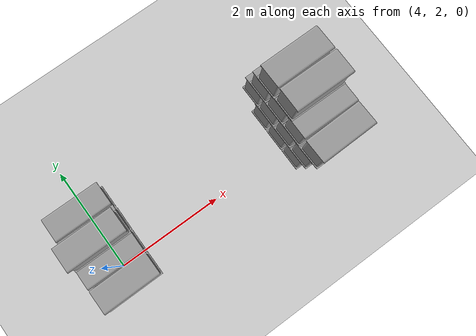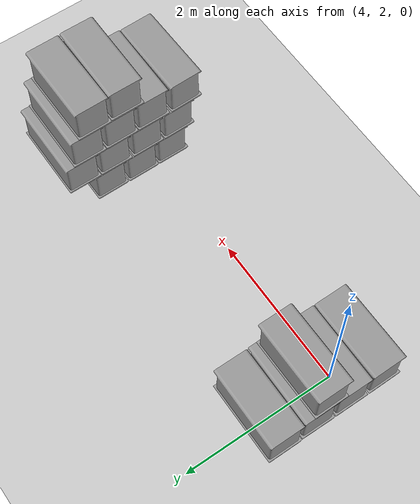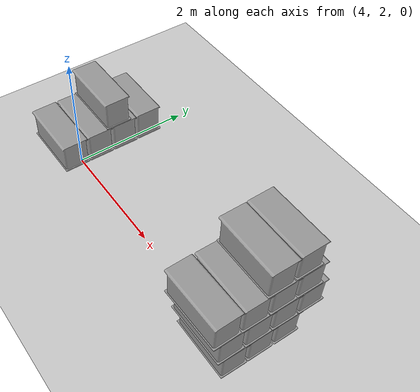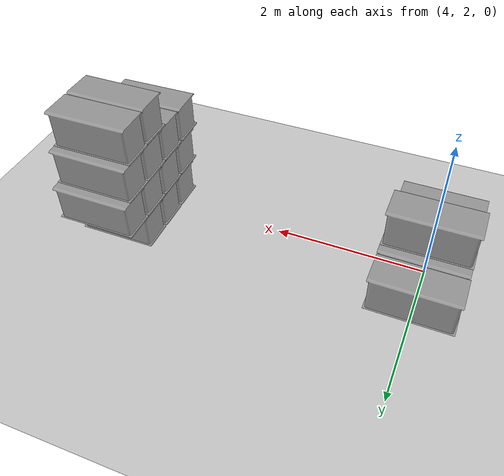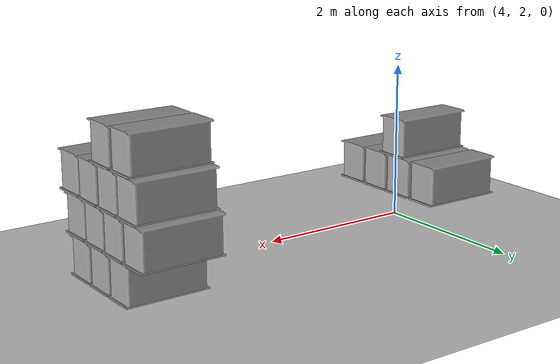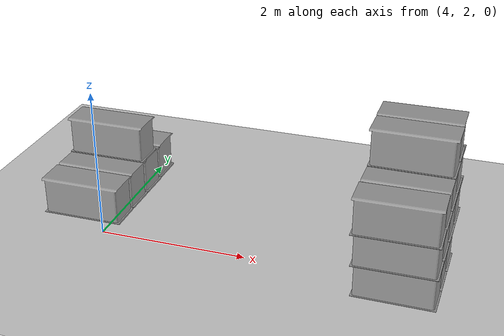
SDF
<sdf version="1.7">
 <world name="default">
  <model name="ground_plane">
   <static>1</static>
   <link name="link">
    <collision name="collision">
     <geometry><plane><normal>0 0 1</normal><size>100 100</size></plane></geometry>
     <surface><friction><ode><mu>100</mu><mu2>50</mu2></ode></friction></surface>
    </collision>
    <visual name="visual">
     <cast_shadows>0</cast_shadows>
     <geometry><plane><normal>0 0 1</normal><size>100 100</size></plane></geometry>
     <material>
      <script><uri>file://media/materials/scripts/gazebo.material</uri><name>Gazebo/Grey</name></script>
     </material>
    </visual>
   </link>
  </model>
  <model name="my_robot48">
   <link name="link_0">
    <inertial>
     <mass>1</mass>
     <inertia>
      <ixx>0.166667</ixx>
      <ixy>0</ixy>
      <ixz>0</ixz>
      <iyy>0.166667</iyy>
      <iyz>0</iyz>
      <izz>0.166667</izz>
     </inertia>
    </inertial>
    <visual name="visual">
     <geometry><mesh><uri>/home/cyun/cotton_box.stl</uri><scale>1 1 1</scale></mesh></geometry>
     <material>
      <lighting>1</lighting>
      <script><uri>file://media/materials/scripts/gazebo.material</uri><name>Gazebo/Grey</name></script>
      <shader type="pixel"><normal_map>__default__</normal_map></shader>
      <ambient>0.3 0.3 0.3 1</ambient>
      <diffuse>0.7 0.7 0.7 1</diffuse>
      <specular>0.01 0.01 0.01 1</specular>
      <emissive>0 0 0 1</emissive>
     </material>
    </visual>
    <collision name="collision">
     <geometry><mesh><uri>/home/cyun/cotton_box.stl</uri><scale>1 1 1</scale></mesh></geometry>
     <surface>
      <friction>
       <ode><mu>1</mu><mu2>1</mu2><fdir1>0 0 0</fdir1><slip1>0</slip1><slip2>0</slip2></ode>
       <torsional>
        <coefficient>1</coefficient>
        <patch_radius>0</patch_radius>
        <surface_radius>0</surface_radius>
        <use_patch_radius>1</use_patch_radius>
        <ode><slip>0</slip></ode>
       </torsional>
      </friction>
      <bounce><restitution_coefficient>0</restitution_coefficient><threshold>1e+06</threshold></bounce>
      <contact>
       <collide_without_contact>0</collide_without_contact>
       <collide_without_contact_bitmask>1</collide_without_contact_bitmask>
       <collide_bitmask>1</collide_bitmask>
       <ode>
        <soft_cfm>0</soft_cfm>
        <soft_erp>0.2</soft_erp>
        <kp>1e+13</kp>
        <kd>1</kd>
        <max_vel>0.01</max_vel>
        <min_depth>0</min_depth>
       </ode>
       <bullet>
        <split_impulse>1</split_impulse>
        <split_impulse_penetration_threshold>-0.01</split_impulse_penetration_threshold>
        <soft_cfm>0</soft_cfm>
        <soft_erp>0.2</soft_erp>
        <kp>1e+13</kp>
        <kd>1</kd>
       </bullet>
      </contact>
     </surface>
    </collision>
   </link>
   <static>0</static>
   <pose>4.00113 1.7054 0.509977 4e-06 6.8e-05 1.57372</pose>
  </model>
  <model name="my_robot49">
   <link name="link_0">
    <inertial>
     <mass>1</mass>
     <inertia>
      <ixx>0.166667</ixx>
      <ixy>0</ixy>
      <ixz>0</ixz>
      <iyy>0.166667</iyy>
      <iyz>0</iyz>
      <izz>0.166667</izz>
     </inertia>
    </inertial>
    <visual name="visual">
     <geometry><mesh><uri>/home/cyun/cotton_box.stl</uri><scale>1 1 1</scale></mesh></geometry>
     <material>
      <lighting>1</lighting>
      <script><uri>file://media/materials/scripts/gazebo.material</uri><name>Gazebo/Grey</name></script>
      <shader type="pixel"><normal_map>__default__</normal_map></shader>
      <ambient>0.3 0.3 0.3 1</ambient>
      <diffuse>0.7 0.7 0.7 1</diffuse>
      <specular>0.01 0.01 0.01 1</specular>
      <emissive>0 0 0 1</emissive>
     </material>
    </visual>
    <collision name="collision">
     <geometry><mesh><uri>/home/cyun/cotton_box.stl</uri><scale>1 1 1</scale></mesh></geometry>
     <surface>
      <friction>
       <ode><mu>1</mu><mu2>1</mu2><fdir1>0 0 0</fdir1><slip1>0</slip1><slip2>0</slip2></ode>
       <torsional>
        <coefficient>1</coefficient>
        <patch_radius>0</patch_radius>
        <surface_radius>0</surface_radius>
        <use_patch_radius>1</use_patch_radius>
        <ode><slip>0</slip></ode>
       </torsional>
      </friction>
      <bounce><restitution_coefficient>0</restitution_coefficient><threshold>1e+06</threshold></bounce>
      <contact>
       <collide_without_contact>0</collide_without_contact>
       <collide_without_contact_bitmask>1</collide_without_contact_bitmask>
       <collide_bitmask>1</collide_bitmask>
       <ode>
        <soft_cfm>0</soft_cfm>
        <soft_erp>0.2</soft_erp>
        <kp>1e+13</kp>
        <kd>1</kd>
        <max_vel>0.01</max_vel>
        <min_depth>0</min_depth>
       </ode>
       <bullet>
        <split_impulse>1</split_impulse>
        <split_impulse_penetration_threshold>-0.01</split_impulse_penetration_threshold>
        <soft_cfm>0</soft_cfm>
        <soft_erp>0.2</soft_erp>
        <kp>1e+13</kp>
        <kd>1</kd>
       </bullet>
      </contact>
     </surface>
    </collision>
   </link>
   <static>0</static>
   <pose>4.00178 2.15524 0.509986 -8.4e-05 0.000371 1.56371</pose>
  </model>
  <model name="my_robot50">
   <link name="link_0">
    <inertial>
     <mass>1</mass>
     <inertia>
      <ixx>0.166667</ixx>
      <ixy>0</ixy>
      <ixz>0</ixz>
      <iyy>0.166667</iyy>
      <iyz>0</iyz>
      <izz>0.166667</izz>
     </inertia>
    </inertial>
    <visual name="visual">
     <geometry><mesh><uri>/home/cyun/cotton_box.stl</uri><scale>1 1 1</scale></mesh></geometry>
     <material>
      <lighting>1</lighting>
      <script><uri>file://media/materials/scripts/gazebo.material</uri><name>Gazebo/Grey</name></script>
      <shader type="pixel"><normal_map>__default__</normal_map></shader>
      <ambient>0.3 0.3 0.3 1</ambient>
      <diffuse>0.7 0.7 0.7 1</diffuse>
      <specular>0.01 0.01 0.01 1</specular>
      <emissive>0 0 0 1</emissive>
     </material>
    </visual>
    <collision name="collision">
     <geometry><mesh><uri>/home/cyun/cotton_box.stl</uri><scale>1 1 1</scale></mesh></geometry>
     <surface>
      <friction>
       <ode><mu>1</mu><mu2>1</mu2><fdir1>0 0 0</fdir1><slip1>0</slip1><slip2>0</slip2></ode>
       <torsional>
        <coefficient>1</coefficient>
        <patch_radius>0</patch_radius>
        <surface_radius>0</surface_radius>
        <use_patch_radius>1</use_patch_radius>
        <ode><slip>0</slip></ode>
       </torsional>
      </friction>
      <bounce><restitution_coefficient>0</restitution_coefficient><threshold>1e+06</threshold></bounce>
      <contact>
       <collide_without_contact>0</collide_without_contact>
       <collide_without_contact_bitmask>1</collide_without_contact_bitmask>
       <collide_bitmask>1</collide_bitmask>
       <ode>
        <soft_cfm>0</soft_cfm>
        <soft_erp>0.2</soft_erp>
        <kp>1e+13</kp>
        <kd>1</kd>
        <max_vel>0.01</max_vel>
        <min_depth>0</min_depth>
       </ode>
       <bullet>
        <split_impulse>1</split_impulse>
        <split_impulse_penetration_threshold>-0.01</split_impulse_penetration_threshold>
        <soft_cfm>0</soft_cfm>
        <soft_erp>0.2</soft_erp>
        <kp>1e+13</kp>
        <kd>1</kd>
       </bullet>
      </contact>
     </surface>
    </collision>
   </link>
   <static>0</static>
   <pose>4.0044 2.60315 0.509798 -7e-06 0.000242 1.55994</pose>
  </model>
  <model name="my_robot51">
   <link name="link_0">
    <inertial>
     <mass>1</mass>
     <inertia>
      <ixx>0.166667</ixx>
      <ixy>0</ixy>
      <ixz>0</ixz>
      <iyy>0.166667</iyy>
      <iyz>0</iyz>
      <izz>0.166667</izz>
     </inertia>
    </inertial>
    <visual name="visual">
     <geometry><mesh><uri>/home/cyun/cotton_box.stl</uri><scale>1 1 1</scale></mesh></geometry>
     <material>
      <lighting>1</lighting>
      <script><uri>file://media/materials/scripts/gazebo.material</uri><name>Gazebo/Grey</name></script>
      <shader type="pixel"><normal_map>__default__</normal_map></shader>
      <ambient>0.3 0.3 0.3 1</ambient>
      <diffuse>0.7 0.7 0.7 1</diffuse>
      <specular>0.01 0.01 0.01 1</specular>
      <emissive>0 0 0 1</emissive>
     </material>
    </visual>
    <collision name="collision">
     <geometry><mesh><uri>/home/cyun/cotton_box.stl</uri><scale>1 1 1</scale></mesh></geometry>
     <surface>
      <friction>
       <ode><mu>1</mu><mu2>1</mu2><fdir1>0 0 0</fdir1><slip1>0</slip1><slip2>0</slip2></ode>
       <torsional>
        <coefficient>1</coefficient>
        <patch_radius>0</patch_radius>
        <surface_radius>0</surface_radius>
        <use_patch_radius>1</use_patch_radius>
        <ode><slip>0</slip></ode>
       </torsional>
      </friction>
      <bounce><restitution_coefficient>0</restitution_coefficient><threshold>1e+06</threshold></bounce>
      <contact>
       <collide_without_contact>0</collide_without_contact>
       <collide_without_contact_bitmask>1</collide_without_contact_bitmask>
       <collide_bitmask>1</collide_bitmask>
       <ode>
        <soft_cfm>0</soft_cfm>
        <soft_erp>0.2</soft_erp>
        <kp>1e+13</kp>
        <kd>1</kd>
        <max_vel>0.01</max_vel>
        <min_depth>0</min_depth>
       </ode>
       <bullet>
        <split_impulse>1</split_impulse>
        <split_impulse_penetration_threshold>-0.01</split_impulse_penetration_threshold>
        <soft_cfm>0</soft_cfm>
        <soft_erp>0.2</soft_erp>
        <kp>1e+13</kp>
        <kd>1</kd>
       </bullet>
      </contact>
     </surface>
    </collision>
   </link>
   <static>0</static>
   <pose>4.00109 3.0537 0.509995 -0 4.9e-05 1.56627</pose>
  </model>
  <model name="my_robot58">
   <link name="link_0">
    <inertial>
     <mass>1</mass>
     <inertia>
      <ixx>0.166667</ixx>
      <ixy>0</ixy>
      <ixz>0</ixz>
      <iyy>0.166667</iyy>
      <iyz>0</iyz>
      <izz>0.166667</izz>
     </inertia>
    </inertial>
    <visual name="visual">
     <geometry><mesh><uri>/home/cyun/cotton_box.stl</uri><scale>1 1 1</scale></mesh></geometry>
     <material>
      <lighting>1</lighting>
      <script><uri>file://media/materials/scripts/gazebo.material</uri><name>Gazebo/Grey</name></script>
      <shader type="pixel"><normal_map>__default__</normal_map></shader>
      <ambient>0.3 0.3 0.3 1</ambient>
      <diffuse>0.7 0.7 0.7 1</diffuse>
      <specular>0.01 0.01 0.01 1</specular>
      <emissive>0 0 0 1</emissive>
     </material>
    </visual>
    <collision name="collision">
     <geometry><mesh><uri>/home/cyun/cotton_box.stl</uri><scale>1 1 1</scale></mesh></geometry>
     <surface>
      <friction>
       <ode><mu>1</mu><mu2>1</mu2><fdir1>0 0 0</fdir1><slip1>0</slip1><slip2>0</slip2></ode>
       <torsional>
        <coefficient>1</coefficient>
        <patch_radius>0</patch_radius>
        <surface_radius>0</surface_radius>
        <use_patch_radius>1</use_patch_radius>
        <ode><slip>0</slip></ode>
       </torsional>
      </friction>
      <bounce><restitution_coefficient>0</restitution_coefficient><threshold>1e+06</threshold></bounce>
      <contact>
       <collide_without_contact>0</collide_without_contact>
       <collide_without_contact_bitmask>1</collide_without_contact_bitmask>
       <collide_bitmask>1</collide_bitmask>
       <ode>
        <soft_cfm>0</soft_cfm>
        <soft_erp>0.2</soft_erp>
        <kp>1e+13</kp>
        <kd>1</kd>
        <max_vel>0.01</max_vel>
        <min_depth>0</min_depth>
       </ode>
       <bullet>
        <split_impulse>1</split_impulse>
        <split_impulse_penetration_threshold>-0.01</split_impulse_penetration_threshold>
        <soft_cfm>0</soft_cfm>
        <soft_erp>0.2</soft_erp>
        <kp>1e+13</kp>
        <kd>1</kd>
       </bullet>
      </contact>
     </surface>
    </collision>
   </link>
   <static>0</static>
   <pose>4.00194 2.49387 0.999789 8e-06 0.000308 1.57338</pose>
  </model>
  <model name="my_robot73">
   <link name="link_0">
    <inertial>
     <mass>1</mass>
     <inertia>
      <ixx>0.166667</ixx>
      <ixy>0</ixy>
      <ixz>0</ixz>
      <iyy>0.166667</iyy>
      <iyz>0</iyz>
      <izz>0.166667</izz>
     </inertia>
    </inertial>
    <visual name="visual">
     <geometry><mesh><uri>/home/cyun/cotton_box.stl</uri><scale>1 1 1</scale></mesh></geometry>
     <material>
      <lighting>1</lighting>
      <script><uri>file://media/materials/scripts/gazebo.material</uri><name>Gazebo/Grey</name></script>
      <shader type="pixel"><normal_map>__default__</normal_map></shader>
      <ambient>0.3 0.3 0.3 1</ambient>
      <diffuse>0.7 0.7 0.7 1</diffuse>
      <specular>0.01 0.01 0.01 1</specular>
      <emissive>0 0 0 1</emissive>
     </material>
    </visual>
    <collision name="collision">
     <geometry><mesh><uri>/home/cyun/cotton_box.stl</uri><scale>1 1 1</scale></mesh></geometry>
     <surface>
      <friction>
       <ode><mu>1</mu><mu2>1</mu2><fdir1>0 0 0</fdir1><slip1>0</slip1><slip2>0</slip2></ode>
       <torsional>
        <coefficient>1</coefficient>
        <patch_radius>0</patch_radius>
        <surface_radius>0</surface_radius>
        <use_patch_radius>1</use_patch_radius>
        <ode><slip>0</slip></ode>
       </torsional>
      </friction>
      <bounce><restitution_coefficient>0</restitution_coefficient><threshold>1e+06</threshold></bounce>
      <contact>
       <collide_without_contact>0</collide_without_contact>
       <collide_without_contact_bitmask>1</collide_without_contact_bitmask>
       <collide_bitmask>1</collide_bitmask>
       <ode>
        <soft_cfm>0</soft_cfm>
        <soft_erp>0.2</soft_erp>
        <kp>1e+13</kp>
        <kd>1</kd>
        <max_vel>0.01</max_vel>
        <min_depth>0</min_depth>
       </ode>
       <bullet>
        <split_impulse>1</split_impulse>
        <split_impulse_penetration_threshold>-0.01</split_impulse_penetration_threshold>
        <soft_cfm>0</soft_cfm>
        <soft_erp>0.2</soft_erp>
        <kp>1e+13</kp>
        <kd>1</kd>
       </bullet>
      </contact>
     </surface>
    </collision>
   </link>
   <static>0</static>
   <pose>7.9995 1.80122 0.019975 -4.7e-05 9e-06 1.56784</pose>
  </model>
  <model name="my_robot74">
   <link name="link_0">
    <inertial>
     <mass>1</mass>
     <inertia>
      <ixx>0.166667</ixx>
      <ixy>0</ixy>
      <ixz>0</ixz>
      <iyy>0.166667</iyy>
      <iyz>0</iyz>
      <izz>0.166667</izz>
     </inertia>
    </inertial>
    <visual name="visual">
     <geometry><mesh><uri>/home/cyun/cotton_box.stl</uri><scale>1 1 1</scale></mesh></geometry>
     <material>
      <lighting>1</lighting>
      <script><uri>file://media/materials/scripts/gazebo.material</uri><name>Gazebo/Grey</name></script>
      <shader type="pixel"><normal_map>__default__</normal_map></shader>
      <ambient>0.3 0.3 0.3 1</ambient>
      <diffuse>0.7 0.7 0.7 1</diffuse>
      <specular>0.01 0.01 0.01 1</specular>
      <emissive>0 0 0 1</emissive>
     </material>
    </visual>
    <collision name="collision">
     <geometry><mesh><uri>/home/cyun/cotton_box.stl</uri><scale>1 1 1</scale></mesh></geometry>
     <surface>
      <friction>
       <ode><mu>1</mu><mu2>1</mu2><fdir1>0 0 0</fdir1><slip1>0</slip1><slip2>0</slip2></ode>
       <torsional>
        <coefficient>1</coefficient>
        <patch_radius>0</patch_radius>
        <surface_radius>0</surface_radius>
        <use_patch_radius>1</use_patch_radius>
        <ode><slip>0</slip></ode>
       </torsional>
      </friction>
      <bounce><restitution_coefficient>0</restitution_coefficient><threshold>1e+06</threshold></bounce>
      <contact>
       <collide_without_contact>0</collide_without_contact>
       <collide_without_contact_bitmask>1</collide_without_contact_bitmask>
       <collide_bitmask>1</collide_bitmask>
       <ode>
        <soft_cfm>0</soft_cfm>
        <soft_erp>0.2</soft_erp>
        <kp>1e+13</kp>
        <kd>1</kd>
        <max_vel>0.01</max_vel>
        <min_depth>0</min_depth>
       </ode>
       <bullet>
        <split_impulse>1</split_impulse>
        <split_impulse_penetration_threshold>-0.01</split_impulse_penetration_threshold>
        <soft_cfm>0</soft_cfm>
        <soft_erp>0.2</soft_erp>
        <kp>1e+13</kp>
        <kd>1</kd>
       </bullet>
      </contact>
     </surface>
    </collision>
   </link>
   <static>0</static>
   <pose>7.99869 2.24957 0.019893 8e-06 2.6e-05 1.57202</pose>
  </model>
  <model name="my_robot75">
   <link name="link_0">
    <inertial>
     <mass>1</mass>
     <inertia>
      <ixx>0.166667</ixx>
      <ixy>0</ixy>
      <ixz>0</ixz>
      <iyy>0.166667</iyy>
      <iyz>0</iyz>
      <izz>0.166667</izz>
     </inertia>
    </inertial>
    <visual name="visual">
     <geometry><mesh><uri>/home/cyun/cotton_box.stl</uri><scale>1 1 1</scale></mesh></geometry>
     <material>
      <lighting>1</lighting>
      <script><uri>file://media/materials/scripts/gazebo.material</uri><name>Gazebo/Grey</name></script>
      <shader type="pixel"><normal_map>__default__</normal_map></shader>
      <ambient>0.3 0.3 0.3 1</ambient>
      <diffuse>0.7 0.7 0.7 1</diffuse>
      <specular>0.01 0.01 0.01 1</specular>
      <emissive>0 0 0 1</emissive>
     </material>
    </visual>
    <collision name="collision">
     <geometry><mesh><uri>/home/cyun/cotton_box.stl</uri><scale>1 1 1</scale></mesh></geometry>
     <surface>
      <friction>
       <ode><mu>1</mu><mu2>1</mu2><fdir1>0 0 0</fdir1><slip1>0</slip1><slip2>0</slip2></ode>
       <torsional>
        <coefficient>1</coefficient>
        <patch_radius>0</patch_radius>
        <surface_radius>0</surface_radius>
        <use_patch_radius>1</use_patch_radius>
        <ode><slip>0</slip></ode>
       </torsional>
      </friction>
      <bounce><restitution_coefficient>0</restitution_coefficient><threshold>1e+06</threshold></bounce>
      <contact>
       <collide_without_contact>0</collide_without_contact>
       <collide_without_contact_bitmask>1</collide_without_contact_bitmask>
       <collide_bitmask>1</collide_bitmask>
       <ode>
        <soft_cfm>0</soft_cfm>
        <soft_erp>0.2</soft_erp>
        <kp>1e+13</kp>
        <kd>1</kd>
        <max_vel>0.01</max_vel>
        <min_depth>0</min_depth>
       </ode>
       <bullet>
        <split_impulse>1</split_impulse>
        <split_impulse_penetration_threshold>-0.01</split_impulse_penetration_threshold>
        <soft_cfm>0</soft_cfm>
        <soft_erp>0.2</soft_erp>
        <kp>1e+13</kp>
        <kd>1</kd>
       </bullet>
      </contact>
     </surface>
    </collision>
   </link>
   <static>0</static>
   <pose>8.00042 2.70325 0.020001 7e-06 -1.4e-05 1.57474</pose>
  </model>
  <model name="my_robot82">
   <link name="link_0">
    <inertial>
     <mass>1</mass>
     <inertia>
      <ixx>0.166667</ixx>
      <ixy>0</ixy>
      <ixz>0</ixz>
      <iyy>0.166667</iyy>
      <iyz>0</iyz>
      <izz>0.166667</izz>
     </inertia>
    </inertial>
    <visual name="visual">
     <geometry><mesh><uri>/home/cyun/cotton_box.stl</uri><scale>1 1 1</scale></mesh></geometry>
     <material>
      <lighting>1</lighting>
      <script><uri>file://media/materials/scripts/gazebo.material</uri><name>Gazebo/Grey</name></script>
      <shader type="pixel"><normal_map>__default__</normal_map></shader>
      <ambient>0.3 0.3 0.3 1</ambient>
      <diffuse>0.7 0.7 0.7 1</diffuse>
      <specular>0.01 0.01 0.01 1</specular>
      <emissive>0 0 0 1</emissive>
     </material>
    </visual>
    <collision name="collision">
     <geometry><mesh><uri>/home/cyun/cotton_box.stl</uri><scale>1 1 1</scale></mesh></geometry>
     <surface>
      <friction>
       <ode><mu>1</mu><mu2>1</mu2><fdir1>0 0 0</fdir1><slip1>0</slip1><slip2>0</slip2></ode>
       <torsional>
        <coefficient>1</coefficient>
        <patch_radius>0</patch_radius>
        <surface_radius>0</surface_radius>
        <use_patch_radius>1</use_patch_radius>
        <ode><slip>0</slip></ode>
       </torsional>
      </friction>
      <bounce><restitution_coefficient>0</restitution_coefficient><threshold>1e+06</threshold></bounce>
      <contact>
       <collide_without_contact>0</collide_without_contact>
       <collide_without_contact_bitmask>1</collide_without_contact_bitmask>
       <collide_bitmask>1</collide_bitmask>
       <ode>
        <soft_cfm>0</soft_cfm>
        <soft_erp>0.2</soft_erp>
        <kp>1e+13</kp>
        <kd>1</kd>
        <max_vel>0.01</max_vel>
        <min_depth>0</min_depth>
       </ode>
       <bullet>
        <split_impulse>1</split_impulse>
        <split_impulse_penetration_threshold>-0.01</split_impulse_penetration_threshold>
        <soft_cfm>0</soft_cfm>
        <soft_erp>0.2</soft_erp>
        <kp>1e+13</kp>
        <kd>1</kd>
       </bullet>
      </contact>
     </surface>
    </collision>
   </link>
   <static>0</static>
   <pose>7.99732 1.70547 0.50998 -4.9e-05 2.4e-05 1.58109</pose>
  </model>
  <model name="my_robot83">
   <link name="link_0">
    <inertial>
     <mass>1</mass>
     <inertia>
      <ixx>0.166667</ixx>
      <ixy>0</ixy>
      <ixz>0</ixz>
      <iyy>0.166667</iyy>
      <iyz>0</iyz>
      <izz>0.166667</izz>
     </inertia>
    </inertial>
    <visual name="visual">
     <geometry><mesh><uri>/home/cyun/cotton_box.stl</uri><scale>1 1 1</scale></mesh></geometry>
     <material>
      <lighting>1</lighting>
      <script><uri>file://media/materials/scripts/gazebo.material</uri><name>Gazebo/Grey</name></script>
      <shader type="pixel"><normal_map>__default__</normal_map></shader>
      <ambient>0.3 0.3 0.3 1</ambient>
      <diffuse>0.7 0.7 0.7 1</diffuse>
      <specular>0.01 0.01 0.01 1</specular>
      <emissive>0 0 0 1</emissive>
     </material>
    </visual>
    <collision name="collision">
     <geometry><mesh><uri>/home/cyun/cotton_box.stl</uri><scale>1 1 1</scale></mesh></geometry>
     <surface>
      <friction>
       <ode><mu>1</mu><mu2>1</mu2><fdir1>0 0 0</fdir1><slip1>0</slip1><slip2>0</slip2></ode>
       <torsional>
        <coefficient>1</coefficient>
        <patch_radius>0</patch_radius>
        <surface_radius>0</surface_radius>
        <use_patch_radius>1</use_patch_radius>
        <ode><slip>0</slip></ode>
       </torsional>
      </friction>
      <bounce><restitution_coefficient>0</restitution_coefficient><threshold>1e+06</threshold></bounce>
      <contact>
       <collide_without_contact>0</collide_without_contact>
       <collide_without_contact_bitmask>1</collide_without_contact_bitmask>
       <collide_bitmask>1</collide_bitmask>
       <ode>
        <soft_cfm>0</soft_cfm>
        <soft_erp>0.2</soft_erp>
        <kp>1e+13</kp>
        <kd>1</kd>
        <max_vel>0.01</max_vel>
        <min_depth>0</min_depth>
       </ode>
       <bullet>
        <split_impulse>1</split_impulse>
        <split_impulse_penetration_threshold>-0.01</split_impulse_penetration_threshold>
        <soft_cfm>0</soft_cfm>
        <soft_erp>0.2</soft_erp>
        <kp>1e+13</kp>
        <kd>1</kd>
       </bullet>
      </contact>
     </surface>
    </collision>
   </link>
   <static>0</static>
   <pose>7.99918 2.15374 0.509942 -1.9e-05 0.000129 1.57398</pose>
  </model>
  <model name="my_robot84">
   <link name="link_0">
    <inertial>
     <mass>1</mass>
     <inertia>
      <ixx>0.166667</ixx>
      <ixy>0</ixy>
      <ixz>0</ixz>
      <iyy>0.166667</iyy>
      <iyz>0</iyz>
      <izz>0.166667</izz>
     </inertia>
    </inertial>
    <visual name="visual">
     <geometry><mesh><uri>/home/cyun/cotton_box.stl</uri><scale>1 1 1</scale></mesh></geometry>
     <material>
      <lighting>1</lighting>
      <script><uri>file://media/materials/scripts/gazebo.material</uri><name>Gazebo/Grey</name></script>
      <shader type="pixel"><normal_map>__default__</normal_map></shader>
      <ambient>0.3 0.3 0.3 1</ambient>
      <diffuse>0.7 0.7 0.7 1</diffuse>
      <specular>0.01 0.01 0.01 1</specular>
      <emissive>0 0 0 1</emissive>
     </material>
    </visual>
    <collision name="collision">
     <geometry><mesh><uri>/home/cyun/cotton_box.stl</uri><scale>1 1 1</scale></mesh></geometry>
     <surface>
      <friction>
       <ode><mu>1</mu><mu2>1</mu2><fdir1>0 0 0</fdir1><slip1>0</slip1><slip2>0</slip2></ode>
       <torsional>
        <coefficient>1</coefficient>
        <patch_radius>0</patch_radius>
        <surface_radius>0</surface_radius>
        <use_patch_radius>1</use_patch_radius>
        <ode><slip>0</slip></ode>
       </torsional>
      </friction>
      <bounce><restitution_coefficient>0</restitution_coefficient><threshold>1e+06</threshold></bounce>
      <contact>
       <collide_without_contact>0</collide_without_contact>
       <collide_without_contact_bitmask>1</collide_without_contact_bitmask>
       <collide_bitmask>1</collide_bitmask>
       <ode>
        <soft_cfm>0</soft_cfm>
        <soft_erp>0.2</soft_erp>
        <kp>1e+13</kp>
        <kd>1</kd>
        <max_vel>0.01</max_vel>
        <min_depth>0</min_depth>
       </ode>
       <bullet>
        <split_impulse>1</split_impulse>
        <split_impulse_penetration_threshold>-0.01</split_impulse_penetration_threshold>
        <soft_cfm>0</soft_cfm>
        <soft_erp>0.2</soft_erp>
        <kp>1e+13</kp>
        <kd>1</kd>
       </bullet>
      </contact>
     </surface>
    </collision>
   </link>
   <static>0</static>
   <pose>8.00201 2.60611 0.509998 9e-06 -1.4e-05 1.56244</pose>
  </model>
  <model name="my_robot85">
   <link name="link_0">
    <inertial>
     <mass>1</mass>
     <inertia>
      <ixx>0.166667</ixx>
      <ixy>0</ixy>
      <ixz>0</ixz>
      <iyy>0.166667</iyy>
      <iyz>0</iyz>
      <izz>0.166667</izz>
     </inertia>
    </inertial>
    <visual name="visual">
     <geometry><mesh><uri>/home/cyun/cotton_box.stl</uri><scale>1 1 1</scale></mesh></geometry>
     <material>
      <lighting>1</lighting>
      <script><uri>file://media/materials/scripts/gazebo.material</uri><name>Gazebo/Grey</name></script>
      <shader type="pixel"><normal_map>__default__</normal_map></shader>
      <ambient>0.3 0.3 0.3 1</ambient>
      <diffuse>0.7 0.7 0.7 1</diffuse>
      <specular>0.01 0.01 0.01 1</specular>
      <emissive>0 0 0 1</emissive>
     </material>
    </visual>
    <collision name="collision">
     <geometry><mesh><uri>/home/cyun/cotton_box.stl</uri><scale>1 1 1</scale></mesh></geometry>
     <surface>
      <friction>
       <ode><mu>1</mu><mu2>1</mu2><fdir1>0 0 0</fdir1><slip1>0</slip1><slip2>0</slip2></ode>
       <torsional>
        <coefficient>1</coefficient>
        <patch_radius>0</patch_radius>
        <surface_radius>0</surface_radius>
        <use_patch_radius>1</use_patch_radius>
        <ode><slip>0</slip></ode>
       </torsional>
      </friction>
      <bounce><restitution_coefficient>0</restitution_coefficient><threshold>1e+06</threshold></bounce>
      <contact>
       <collide_without_contact>0</collide_without_contact>
       <collide_without_contact_bitmask>1</collide_without_contact_bitmask>
       <collide_bitmask>1</collide_bitmask>
       <ode>
        <soft_cfm>0</soft_cfm>
        <soft_erp>0.2</soft_erp>
        <kp>1e+13</kp>
        <kd>1</kd>
        <max_vel>0.01</max_vel>
        <min_depth>0</min_depth>
       </ode>
       <bullet>
        <split_impulse>1</split_impulse>
        <split_impulse_penetration_threshold>-0.01</split_impulse_penetration_threshold>
        <soft_cfm>0</soft_cfm>
        <soft_erp>0.2</soft_erp>
        <kp>1e+13</kp>
        <kd>1</kd>
       </bullet>
      </contact>
     </surface>
    </collision>
   </link>
   <static>0</static>
   <pose>8.00302 3.05564 0.509978 -1.7e-05 8.3e-05 1.5714</pose>
  </model>
  <model name="my_robot90">
   <link name="link_0">
    <inertial>
     <mass>1</mass>
     <inertia>
      <ixx>0.166667</ixx>
      <ixy>0</ixy>
      <ixz>0</ixz>
      <iyy>0.166667</iyy>
      <iyz>0</iyz>
      <izz>0.166667</izz>
     </inertia>
    </inertial>
    <visual name="visual">
     <geometry><mesh><uri>/home/cyun/cotton_box.stl</uri><scale>1 1 1</scale></mesh></geometry>
     <material>
      <lighting>1</lighting>
      <script><uri>file://media/materials/scripts/gazebo.material</uri><name>Gazebo/Grey</name></script>
      <shader type="pixel"><normal_map>__default__</normal_map></shader>
      <ambient>0.3 0.3 0.3 1</ambient>
      <diffuse>0.7 0.7 0.7 1</diffuse>
      <specular>0.01 0.01 0.01 1</specular>
      <emissive>0 0 0 1</emissive>
     </material>
    </visual>
    <collision name="collision">
     <geometry><mesh><uri>/home/cyun/cotton_box.stl</uri><scale>1 1 1</scale></mesh></geometry>
     <surface>
      <friction>
       <ode><mu>1</mu><mu2>1</mu2><fdir1>0 0 0</fdir1><slip1>0</slip1><slip2>0</slip2></ode>
       <torsional>
        <coefficient>1</coefficient>
        <patch_radius>0</patch_radius>
        <surface_radius>0</surface_radius>
        <use_patch_radius>1</use_patch_radius>
        <ode><slip>0</slip></ode>
       </torsional>
      </friction>
      <bounce><restitution_coefficient>0</restitution_coefficient><threshold>1e+06</threshold></bounce>
      <contact>
       <collide_without_contact>0</collide_without_contact>
       <collide_without_contact_bitmask>1</collide_without_contact_bitmask>
       <collide_bitmask>1</collide_bitmask>
       <ode>
        <soft_cfm>0</soft_cfm>
        <soft_erp>0.2</soft_erp>
        <kp>1e+13</kp>
        <kd>1</kd>
        <max_vel>0.01</max_vel>
        <min_depth>0</min_depth>
       </ode>
       <bullet>
        <split_impulse>1</split_impulse>
        <split_impulse_penetration_threshold>-0.01</split_impulse_penetration_threshold>
        <soft_cfm>0</soft_cfm>
        <soft_erp>0.2</soft_erp>
        <kp>1e+13</kp>
        <kd>1</kd>
       </bullet>
      </contact>
     </surface>
    </collision>
   </link>
   <static>0</static>
   <pose>7.99757 1.59681 1.00001 -1.7e-05 1.5e-05 1.58922</pose>
  </model>
  <model name="my_robot91">
   <link name="link_0">
    <inertial>
     <mass>1</mass>
     <inertia>
      <ixx>0.166667</ixx>
      <ixy>0</ixy>
      <ixz>0</ixz>
      <iyy>0.166667</iyy>
      <iyz>0</iyz>
      <izz>0.166667</izz>
     </inertia>
    </inertial>
    <visual name="visual">
     <geometry><mesh><uri>/home/cyun/cotton_box.stl</uri><scale>1 1 1</scale></mesh></geometry>
     <material>
      <lighting>1</lighting>
      <script><uri>file://media/materials/scripts/gazebo.material</uri><name>Gazebo/Grey</name></script>
      <shader type="pixel"><normal_map>__default__</normal_map></shader>
      <ambient>0.3 0.3 0.3 1</ambient>
      <diffuse>0.7 0.7 0.7 1</diffuse>
      <specular>0.01 0.01 0.01 1</specular>
      <emissive>0 0 0 1</emissive>
     </material>
    </visual>
    <collision name="collision">
     <geometry><mesh><uri>/home/cyun/cotton_box.stl</uri><scale>1 1 1</scale></mesh></geometry>
     <surface>
      <friction>
       <ode><mu>1</mu><mu2>1</mu2><fdir1>0 0 0</fdir1><slip1>0</slip1><slip2>0</slip2></ode>
       <torsional>
        <coefficient>1</coefficient>
        <patch_radius>0</patch_radius>
        <surface_radius>0</surface_radius>
        <use_patch_radius>1</use_patch_radius>
        <ode><slip>0</slip></ode>
       </torsional>
      </friction>
      <bounce><restitution_coefficient>0</restitution_coefficient><threshold>1e+06</threshold></bounce>
      <contact>
       <collide_without_contact>0</collide_without_contact>
       <collide_without_contact_bitmask>1</collide_without_contact_bitmask>
       <collide_bitmask>1</collide_bitmask>
       <ode>
        <soft_cfm>0</soft_cfm>
        <soft_erp>0.2</soft_erp>
        <kp>1e+13</kp>
        <kd>1</kd>
        <max_vel>0.01</max_vel>
        <min_depth>0</min_depth>
       </ode>
       <bullet>
        <split_impulse>1</split_impulse>
        <split_impulse_penetration_threshold>-0.01</split_impulse_penetration_threshold>
        <soft_cfm>0</soft_cfm>
        <soft_erp>0.2</soft_erp>
        <kp>1e+13</kp>
        <kd>1</kd>
       </bullet>
      </contact>
     </surface>
    </collision>
   </link>
   <static>0</static>
   <pose>8.00056 2.04745 0.999947 -1.6e-05 7.1e-05 1.56869</pose>
  </model>
  <model name="my_robot92">
   <link name="link_0">
    <inertial>
     <mass>1</mass>
     <inertia>
      <ixx>0.166667</ixx>
      <ixy>0</ixy>
      <ixz>0</ixz>
      <iyy>0.166667</iyy>
      <iyz>0</iyz>
      <izz>0.166667</izz>
     </inertia>
    </inertial>
    <visual name="visual">
     <geometry><mesh><uri>/home/cyun/cotton_box.stl</uri><scale>1 1 1</scale></mesh></geometry>
     <material>
      <lighting>1</lighting>
      <script><uri>file://media/materials/scripts/gazebo.material</uri><name>Gazebo/Grey</name></script>
      <shader type="pixel"><normal_map>__default__</normal_map></shader>
      <ambient>0.3 0.3 0.3 1</ambient>
      <diffuse>0.7 0.7 0.7 1</diffuse>
      <specular>0.01 0.01 0.01 1</specular>
      <emissive>0 0 0 1</emissive>
     </material>
    </visual>
    <collision name="collision">
     <geometry><mesh><uri>/home/cyun/cotton_box.stl</uri><scale>1 1 1</scale></mesh></geometry>
     <surface>
      <friction>
       <ode><mu>1</mu><mu2>1</mu2><fdir1>0 0 0</fdir1><slip1>0</slip1><slip2>0</slip2></ode>
       <torsional>
        <coefficient>1</coefficient>
        <patch_radius>0</patch_radius>
        <surface_radius>0</surface_radius>
        <use_patch_radius>1</use_patch_radius>
        <ode><slip>0</slip></ode>
       </torsional>
      </friction>
      <bounce><restitution_coefficient>0</restitution_coefficient><threshold>1e+06</threshold></bounce>
      <contact>
       <collide_without_contact>0</collide_without_contact>
       <collide_without_contact_bitmask>1</collide_without_contact_bitmask>
       <collide_bitmask>1</collide_bitmask>
       <ode>
        <soft_cfm>0</soft_cfm>
        <soft_erp>0.2</soft_erp>
        <kp>1e+13</kp>
        <kd>1</kd>
        <max_vel>0.01</max_vel>
        <min_depth>0</min_depth>
       </ode>
       <bullet>
        <split_impulse>1</split_impulse>
        <split_impulse_penetration_threshold>-0.01</split_impulse_penetration_threshold>
        <soft_cfm>0</soft_cfm>
        <soft_erp>0.2</soft_erp>
        <kp>1e+13</kp>
        <kd>1</kd>
       </bullet>
      </contact>
     </surface>
    </collision>
   </link>
   <static>0</static>
   <pose>7.99915 2.49628 0.999995 -2e-06 -1.7e-05 1.5738</pose>
  </model>
  <model name="my_robot93">
   <link name="link_0">
    <inertial>
     <mass>1</mass>
     <inertia>
      <ixx>0.166667</ixx>
      <ixy>0</ixy>
      <ixz>0</ixz>
      <iyy>0.166667</iyy>
      <iyz>0</iyz>
      <izz>0.166667</izz>
     </inertia>
    </inertial>
    <visual name="visual">
     <geometry><mesh><uri>/home/cyun/cotton_box.stl</uri><scale>1 1 1</scale></mesh></geometry>
     <material>
      <lighting>1</lighting>
      <script><uri>file://media/materials/scripts/gazebo.material</uri><name>Gazebo/Grey</name></script>
      <shader type="pixel"><normal_map>__default__</normal_map></shader>
      <ambient>0.3 0.3 0.3 1</ambient>
      <diffuse>0.7 0.7 0.7 1</diffuse>
      <specular>0.01 0.01 0.01 1</specular>
      <emissive>0 0 0 1</emissive>
     </material>
    </visual>
    <collision name="collision">
     <geometry><mesh><uri>/home/cyun/cotton_box.stl</uri><scale>1 1 1</scale></mesh></geometry>
     <surface>
      <friction>
       <ode><mu>1</mu><mu2>1</mu2><fdir1>0 0 0</fdir1><slip1>0</slip1><slip2>0</slip2></ode>
       <torsional>
        <coefficient>1</coefficient>
        <patch_radius>0</patch_radius>
        <surface_radius>0</surface_radius>
        <use_patch_radius>1</use_patch_radius>
        <ode><slip>0</slip></ode>
       </torsional>
      </friction>
      <bounce><restitution_coefficient>0</restitution_coefficient><threshold>1e+06</threshold></bounce>
      <contact>
       <collide_without_contact>0</collide_without_contact>
       <collide_without_contact_bitmask>1</collide_without_contact_bitmask>
       <collide_bitmask>1</collide_bitmask>
       <ode>
        <soft_cfm>0</soft_cfm>
        <soft_erp>0.2</soft_erp>
        <kp>1e+13</kp>
        <kd>1</kd>
        <max_vel>0.01</max_vel>
        <min_depth>0</min_depth>
       </ode>
       <bullet>
        <split_impulse>1</split_impulse>
        <split_impulse_penetration_threshold>-0.01</split_impulse_penetration_threshold>
        <soft_cfm>0</soft_cfm>
        <soft_erp>0.2</soft_erp>
        <kp>1e+13</kp>
        <kd>1</kd>
       </bullet>
      </contact>
     </surface>
    </collision>
   </link>
   <static>0</static>
   <pose>7.9993 2.9397 1 0 3.5e-05 1.56754</pose>
  </model>
  <model name="my_robot99">
   <link name="link_0">
    <inertial>
     <mass>1</mass>
     <inertia>
      <ixx>0.166667</ixx>
      <ixy>0</ixy>
      <ixz>0</ixz>
      <iyy>0.166667</iyy>
      <iyz>0</iyz>
      <izz>0.166667</izz>
     </inertia>
    </inertial>
    <visual name="visual">
     <geometry><mesh><uri>/home/cyun/cotton_box.stl</uri><scale>1 1 1</scale></mesh></geometry>
     <material>
      <lighting>1</lighting>
      <script><uri>file://media/materials/scripts/gazebo.material</uri><name>Gazebo/Grey</name></script>
      <shader type="pixel"><normal_map>__default__</normal_map></shader>
      <ambient>0.3 0.3 0.3 1</ambient>
      <diffuse>0.7 0.7 0.7 1</diffuse>
      <specular>0.01 0.01 0.01 1</specular>
      <emissive>0 0 0 1</emissive>
     </material>
    </visual>
    <collision name="collision">
     <geometry><mesh><uri>/home/cyun/cotton_box.stl</uri><scale>1 1 1</scale></mesh></geometry>
     <surface>
      <friction>
       <ode><mu>1</mu><mu2>1</mu2><fdir1>0 0 0</fdir1><slip1>0</slip1><slip2>0</slip2></ode>
       <torsional>
        <coefficient>1</coefficient>
        <patch_radius>0</patch_radius>
        <surface_radius>0</surface_radius>
        <use_patch_radius>1</use_patch_radius>
        <ode><slip>0</slip></ode>
       </torsional>
      </friction>
      <bounce><restitution_coefficient>0</restitution_coefficient><threshold>1e+06</threshold></bounce>
      <contact>
       <collide_without_contact>0</collide_without_contact>
       <collide_without_contact_bitmask>1</collide_without_contact_bitmask>
       <collide_bitmask>1</collide_bitmask>
       <ode>
        <soft_cfm>0</soft_cfm>
        <soft_erp>0.2</soft_erp>
        <kp>1e+13</kp>
        <kd>1</kd>
        <max_vel>0.01</max_vel>
        <min_depth>0</min_depth>
       </ode>
       <bullet>
        <split_impulse>1</split_impulse>
        <split_impulse_penetration_threshold>-0.01</split_impulse_penetration_threshold>
        <soft_cfm>0</soft_cfm>
        <soft_erp>0.2</soft_erp>
        <kp>1e+13</kp>
        <kd>1</kd>
       </bullet>
      </contact>
     </surface>
    </collision>
   </link>
   <static>0</static>
   <pose>8.00191 2.3829 1.48999 -2e-06 -1.8e-05 1.56692</pose>
  </model>
  <model name="my_robot100">
   <link name="link_0">
    <inertial>
     <mass>1</mass>
     <inertia>
      <ixx>0.166667</ixx>
      <ixy>0</ixy>
      <ixz>0</ixz>
      <iyy>0.166667</iyy>
      <iyz>0</iyz>
      <izz>0.166667</izz>
     </inertia>
    </inertial>
    <visual name="visual">
     <geometry><mesh><uri>/home/cyun/cotton_box.stl</uri><scale>1 1 1</scale></mesh></geometry>
     <material>
      <lighting>1</lighting>
      <script><uri>file://media/materials/scripts/gazebo.material</uri><name>Gazebo/Grey</name></script>
      <shader type="pixel"><normal_map>__default__</normal_map></shader>
      <ambient>0.3 0.3 0.3 1</ambient>
      <diffuse>0.7 0.7 0.7 1</diffuse>
      <specular>0.01 0.01 0.01 1</specular>
      <emissive>0 0 0 1</emissive>
     </material>
    </visual>
    <collision name="collision">
     <geometry><mesh><uri>/home/cyun/cotton_box.stl</uri><scale>1 1 1</scale></mesh></geometry>
     <surface>
      <friction>
       <ode><mu>1</mu><mu2>1</mu2><fdir1>0 0 0</fdir1><slip1>0</slip1><slip2>0</slip2></ode>
       <torsional>
        <coefficient>1</coefficient>
        <patch_radius>0</patch_radius>
        <surface_radius>0</surface_radius>
        <use_patch_radius>1</use_patch_radius>
        <ode><slip>0</slip></ode>
       </torsional>
      </friction>
      <bounce><restitution_coefficient>0</restitution_coefficient><threshold>1e+06</threshold></bounce>
      <contact>
       <collide_without_contact>0</collide_without_contact>
       <collide_without_contact_bitmask>1</collide_without_contact_bitmask>
       <collide_bitmask>1</collide_bitmask>
       <ode>
        <soft_cfm>0</soft_cfm>
        <soft_erp>0.2</soft_erp>
        <kp>1e+13</kp>
        <kd>1</kd>
        <max_vel>0.01</max_vel>
        <min_depth>0</min_depth>
       </ode>
       <bullet>
        <split_impulse>1</split_impulse>
        <split_impulse_penetration_threshold>-0.01</split_impulse_penetration_threshold>
        <soft_cfm>0</soft_cfm>
        <soft_erp>0.2</soft_erp>
        <kp>1e+13</kp>
        <kd>1</kd>
       </bullet>
      </contact>
     </surface>
    </collision>
   </link>
   <static>0</static>
   <pose>7.99381 2.83209 1.48998 1.9e-05 2.1e-05 1.57747</pose>
  </model>
 </world>
</sdf>
